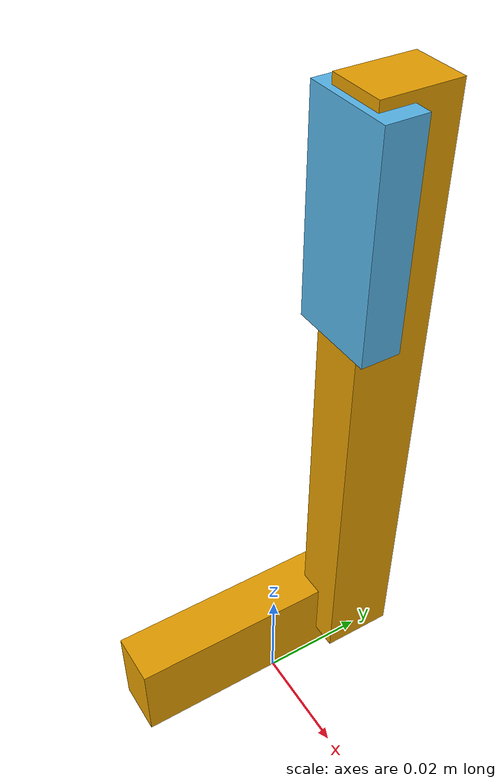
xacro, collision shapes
<?xml version="1.0" ?>
<robot name="baxter" xmlns:xacro="http://www.ros.org/wiki/xacro">

  <xacro:arg name="gazebo" default="true"/>
  <xacro:arg name="right_ee" default="baxter_gripper" />
  <xacro:arg name="left_ee" default="baxter_gripper" />
  <!-- baxter-specific parameters -->
  <xacro:arg name="finger_type" default="extended_narrow" />
  <xacro:arg name="tip_type" default="soft" />
  <xacro:arg name="finger_slot" default="2" />
  <xacro:arg name="finger_grasp" default="inner" />

  <xacro:property name="pi" value="3.1415926535897931" scope="global" />

  <xacro:include filename="$(find ll4ma_robots_description)/robots/baxter/finger.xacro" />

  <!-- test -->
  <xacro:finger
        gripper_side="left"
        finger_side="l"
        finger_type="$(arg finger_type)"
        tip_type="$(arg tip_type)"
        reflect="1" />

  <!-- left end effector -->
  <!--     side="left" -->
  <!--     finger_type="$(arg finger_type)" -->
  <!--     tip_type="$(arg tip_type)" -->
  <!--     finger_slot="$(arg finger_slot)" -->

  <!-- right end effector -->

</robot>

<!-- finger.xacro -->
<robot xmlns:xacro="http://www.ros.org/wiki/xacro" name="finger">

  <!-- standard narrow properties -->
  <xacro:property name="standard_narrow_properties">
    <xacro:property name="finger_length" value="0.075" />
    <xacro:property name="finger_width" value="0.01725" />
    <xacro:property name="finger_box_height" value="0.01" />
    <xacro:property name="finger_box_width" value="0.0135" />
    <xacro:property name="finger_box_length" value="0.04" />
    <xacro:property name="knuckle_box_height" value="0.01" />
    <xacro:property name="knuckle_box_width" value="0.017" />
    <xacro:property name="knuckle_box_length" value="0.05" />
    <xacro:property name="collision_origin_y_coef" value="-0.003" />
  </xacro:property>

  <!-- extended narrow properties -->
  <xacro:property name="extended_narrow_properties">
    <xacro:property name="finger_length" value="0.1127" />
    <xacro:property name="finger_width" value="0.01725" />
    <xacro:property name="finger_box_height" value="0.01" />
    <xacro:property name="finger_box_width" value="0.0135" />
    <xacro:property name="finger_box_length" value="0.0615" />
    <xacro:property name="knuckle_box_height" value="0.01" />
    <xacro:property name="knuckle_box_width" value="0.017" />
    <xacro:property name="knuckle_box_length" value="0.05" />
    <xacro:property name="collision_origin_y_coef" value="-0.003" />
  </xacro:property>

  <!-- standard wide properties -->
  <xacro:property name="standard_wide_properties">
    <xacro:property name="finger_length" value="0.075" />
    <xacro:property name="finger_width" value="0.05503" />
    <xacro:property name="finger_box_height" value="0.01" />
    <xacro:property name="finger_box_width" value="0.0135" />
    <xacro:property name="finger_box_length" value="0.04" />
    <xacro:property name="knuckle_box_height" value="0.01" />
    <xacro:property name="knuckle_box_width" value="0.017" />
    <xacro:property name="knuckle_box_length" value="0.08778" />
    <xacro:property name="collision_origin_y_coef" value="0.016" />
  </xacro:property>

  <!-- extended wide properties -->
  <xacro:property name="extended_wide_properties">
    <xacro:property name="finger_length" value="0.1127" />
    <xacro:property name="finger_width" value="0.05503" />
    <xacro:property name="finger_box_height" value="0.01" />
    <xacro:property name="finger_box_width" value="0.0135" />
    <xacro:property name="finger_box_length" value="0.0615" />
    <xacro:property name="knuckle_box_height" value="0.01" />
    <xacro:property name="knuckle_box_width" value="0.017" />
    <xacro:property name="knuckle_box_length" value="0.08778" />
    <xacro:property name="collision_origin_y_coef" value="0.016" />
  </xacro:property>

  <!-- finger tip collision geometries -->
  <xacro:property name="hard_tip_collision_geometry">
    <box size="0.016 0.0065 0.037"/>
  </xacro:property>
  <xacro:property name="soft_tip_collision_geometry">
    <box size="0.016 0.007 0.037"/>
  </xacro:property>
  <xacro:property name="half_round_tip_collision_geometry">
    <cylinder length="0.037" radius="0.008"/>
  </xacro:property>
  <xacro:property name="paddle_tip_collision_geometry">
    <box size="0.042 0.0065 0.037"/>
  </xacro:property>

  <!-- finger macro -->
  <xacro:macro name="finger" params="gripper_side finger_side finger_type tip_type reflect">
    <!-- resolve properties based on finger type -->
    <xacro:if value="${finger_type == 'standard_narrow'}">
      <xacro:insert_block name="standard_narrow_properties"/>
    </xacro:if>
    <xacro:if value="${finger_type == 'standard_wide'}">
      <xacro:insert_block name="standard_wide_properties"/>
    </xacro:if>
    <xacro:if value="${finger_type == 'extended_narrow'}">
      <xacro:insert_block name="extended_narrow_properties"/>
    </xacro:if>
    <xacro:if value="${finger_type == 'extended_wide'}">
      <xacro:insert_block name="extended_wide_properties"/>
    </xacro:if>

    <link name="${gripper_side}_gripper_${finger_side}_finger">
      <visual>
        <origin rpy="0 0 ${-pi/2*(reflect+1)}" xyz="0 0 0"/>
        <geometry>
          <mesh filename="package://ll4ma_robots_description/meshes/baxter/grippers/fingers/${finger_type}.dae" />
        </geometry>
      </visual>
      <collision>
        <origin rpy="0 0 ${-pi/2*(reflect+1)}" xyz="0 ${finger_width*reflect} ${finger_box_length}"/>
        <geometry>
          <box size="${finger_box_height} ${finger_box_width} ${finger_length}"/>
        </geometry>
      </collision>
      <collision>
        <origin rpy="0 0 ${-pi/2*(reflect+1)}" xyz="${reflect*-0.005} ${collision_origin_y_coef*reflect} 0.0083"/>
        <geometry>
          <box size="${knuckle_box_height} ${knuckle_box_length} ${knuckle_box_width}"/>
        </geometry>
      </collision>
      <inertial>
        <origin rpy="0 0 ${-pi/2*(reflect+1)}" xyz="0 0 0"/>
        <mass value="0.02"/>
        <inertia ixx="0.01" ixy="0" ixz="0" iyy="0.01" iyz="0" izz="0.01"/>
      </inertial>
    </link>

    <!-- add tip of specified type to finger -->
    <xacro:finger_tip
   	tip_type="${tip_type}"
    	parent_link="${gripper_side}_gripper_${finger_side}_finger"
    	reflect="${reflect}">
      <origin rpy="0 0 0" xyz="0.0 ${reflect*finger_width} ${finger_length}"/>
    </xacro:finger_tip>

    <gazebo reference="${gripper_side}_gripper_${finger_side}_finger">
      <mu1>1000</mu1>
      <mu2>1000</mu2>
      <fdir1>0.0 0.0 1.0</fdir1>
      <kp>1e5</kp>
      <kd>1.0</kd>
    </gazebo>

  </xacro:macro>

  <!-- finger tip macro -->
  <xacro:macro name="finger_tip" params="tip_type parent_link reflect *joint_origin">
    <link name="${parent_link}_tip">
      <visual>
        <origin rpy="0 0 ${pi*(reflect+1)/2}" xyz="0 0 0"/>
        <geometry>
          <mesh filename="package://ll4ma_robots_description/meshes/baxter/grippers/finger_tips/${tip_type}_tip.dae" />
        </geometry>
      </visual>
      <collision>
        <origin rpy="0 0 ${pi*(reflect+1)/2}" xyz="0 ${-0.0045*reflect} -0.015"/>
        <geometry>
          <xacro:if value="${tip_type == 'hard'}">
            <xacro:insert_block name="hard_tip_collision_geometry" />
          </xacro:if>
          <xacro:if value="${tip_type == 'soft'}">
            <xacro:insert_block name="soft_tip_collision_geometry" />
          </xacro:if>
          <xacro:if value="${tip_type == 'half_round'}">
            <xacro:insert_block name="half_round_tip_collision_geometry" />
          </xacro:if>
          <xacro:if value="${tip_type == 'paddle'}">
            <xacro:insert_block name="paddle_tip_collision_geometry" />
          </xacro:if>
        </geometry>
      </collision>
      <inertial>
        <origin rpy="0 0 ${pi*(reflect+1)/2}" xyz="0 0 0"/>
        <mass value="0.01"/>
        <inertia ixx="0.01" ixy="0" ixz="0" iyy="0.01" iyz="0" izz="0.01"/>
      </inertial>
    </link>

    <joint name="${parent_link}_tip_joint" type="fixed">
      <xacro:insert_block name="joint_origin" />
      <parent link="${parent_link}"/>
      <child link="${parent_link}_tip"/>
    </joint>

  </xacro:macro>

</robot>
